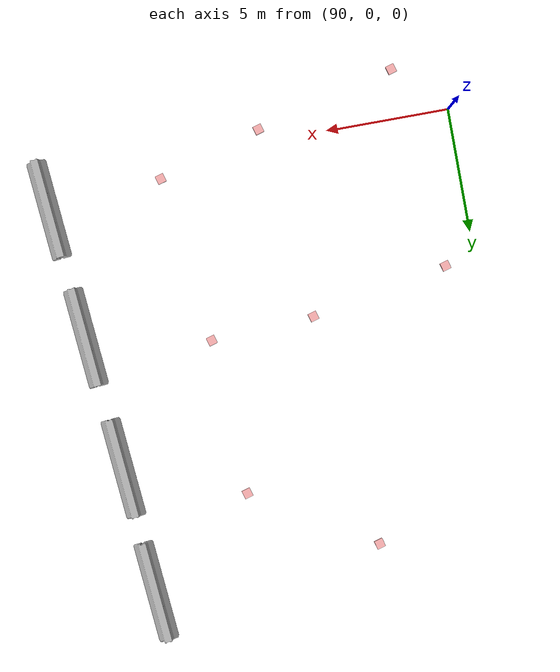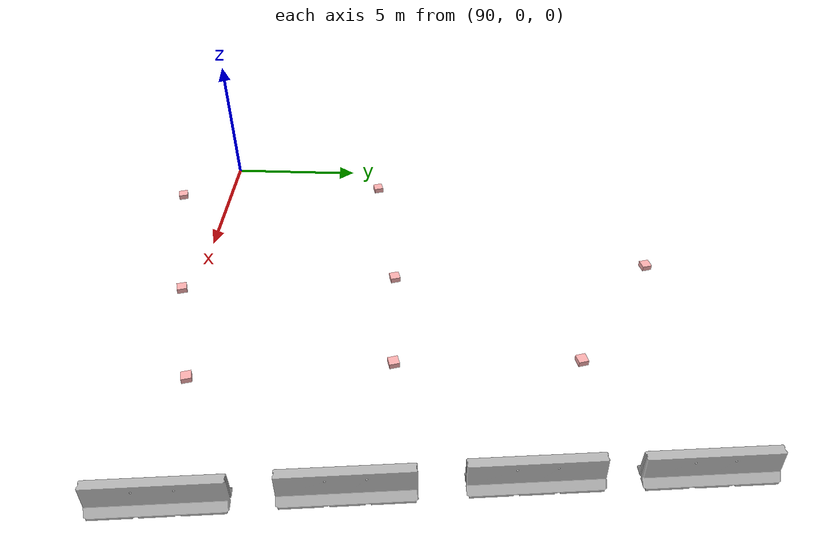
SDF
<sdf version="1.7">
 <world name="default">
  <model name="ground_plane">
   <static>1</static>
   <link name="link">
    <collision name="collision">
     <geometry><plane><normal>0 0 1</normal><size>500 500</size></plane></geometry>
     <surface><friction><ode><mu>100</mu><mu2>50</mu2></ode></friction></surface>
    </collision>
    <velocity_decay><linear>0</linear><angular>0</angular></velocity_decay>
   </link>
  </model>
  <model name="mine_clone_6">
   <link name="link">
    <inertial>
     <mass>1</mass>
     <inertia>
      <ixx>0.166667</ixx>
      <ixy>0</ixy>
      <ixz>0</ixz>
      <iyy>0.166667</iyy>
      <iyz>0</iyz>
      <izz>0.166667</izz>
     </inertia>
    </inertial>
    <visual name="visual">
     <geometry><box><size>0.35 0.35 0.2</size></box></geometry>
     <material>
      <script><name>Gazebo/Grey</name><uri>file://media/materials/scripts/gazebo.material</uri></script>
      <shader type="pixel"><normal_map>__default__</normal_map></shader>
      <diffuse>1 0.7 0.7 1</diffuse>
      <ambient>0.3 0.3 0.3 1</ambient>
      <specular>0.01 0.01 0.01 1</specular>
      <emissive>1 0.7 0 1</emissive>
      <lighting>1</lighting>
     </material>
    </visual>
    <collision name="collision">
     <geometry><box><size>0.35 0.35 0.2</size></box></geometry>
     <surface>
      <friction>
       <ode><mu>1</mu><mu2>1</mu2><fdir1>0 0 0</fdir1><slip1>0</slip1><slip2>0</slip2></ode>
       <torsional>
        <coefficient>1</coefficient>
        <patch_radius>0</patch_radius>
        <surface_radius>0</surface_radius>
        <use_patch_radius>1</use_patch_radius>
        <ode><slip>0</slip></ode>
       </torsional>
      </friction>
      <bounce><restitution_coefficient>0</restitution_coefficient><threshold>1e+06</threshold></bounce>
      <contact>
       <collide_without_contact>0</collide_without_contact>
       <collide_without_contact_bitmask>1</collide_without_contact_bitmask>
       <collide_bitmask>1</collide_bitmask>
       <ode>
        <soft_cfm>0</soft_cfm>
        <soft_erp>0.2</soft_erp>
        <kp>1e+13</kp>
        <kd>1</kd>
        <max_vel>0.01</max_vel>
        <min_depth>0</min_depth>
       </ode>
       <bullet>
        <split_impulse>1</split_impulse>
        <split_impulse_penetration_threshold>-0.01</split_impulse_penetration_threshold>
        <soft_cfm>0</soft_cfm>
        <soft_erp>0.2</soft_erp>
        <kp>1e+13</kp>
        <kd>1</kd>
       </bullet>
      </contact>
     </surface>
    </collision>
   </link>
   <static>0</static>
   <pose>95.7708 16.7644 0.099997 7e-06 -7e-06 -1.28503</pose>
  </model>
  <model name="mine_clone_8">
   <link name="link">
    <inertial>
     <mass>1</mass>
     <inertia>
      <ixx>0.166667</ixx>
      <ixy>0</ixy>
      <ixz>0</ixz>
      <iyy>0.166667</iyy>
      <iyz>0</iyz>
      <izz>0.166667</izz>
     </inertia>
    </inertial>
    <visual name="visual">
     <geometry><box><size>0.35 0.35 0.2</size></box></geometry>
     <material>
      <script><name>Gazebo/Grey</name><uri>file://media/materials/scripts/gazebo.material</uri></script>
      <shader type="pixel"><normal_map>__default__</normal_map></shader>
      <diffuse>1 0.7 0.7 1</diffuse>
      <ambient>0.3 0.3 0.3 1</ambient>
      <specular>0.01 0.01 0.01 1</specular>
      <emissive>1 0.7 0 1</emissive>
      <lighting>1</lighting>
     </material>
    </visual>
    <collision name="collision">
     <geometry><box><size>0.35 0.35 0.2</size></box></geometry>
     <surface>
      <friction>
       <ode><mu>1</mu><mu2>1</mu2><fdir1>0 0 0</fdir1><slip1>0</slip1><slip2>0</slip2></ode>
       <torsional>
        <coefficient>1</coefficient>
        <patch_radius>0</patch_radius>
        <surface_radius>0</surface_radius>
        <use_patch_radius>1</use_patch_radius>
        <ode><slip>0</slip></ode>
       </torsional>
      </friction>
      <bounce><restitution_coefficient>0</restitution_coefficient><threshold>1e+06</threshold></bounce>
      <contact>
       <collide_without_contact>0</collide_without_contact>
       <collide_without_contact_bitmask>1</collide_without_contact_bitmask>
       <collide_bitmask>1</collide_bitmask>
       <ode>
        <soft_cfm>0</soft_cfm>
        <soft_erp>0.2</soft_erp>
        <kp>1e+13</kp>
        <kd>1</kd>
        <max_vel>0.01</max_vel>
        <min_depth>0</min_depth>
       </ode>
       <bullet>
        <split_impulse>1</split_impulse>
        <split_impulse_penetration_threshold>-0.01</split_impulse_penetration_threshold>
        <soft_cfm>0</soft_cfm>
        <soft_erp>0.2</soft_erp>
        <kp>1e+13</kp>
        <kd>1</kd>
       </bullet>
      </contact>
     </surface>
    </collision>
   </link>
   <static>0</static>
   <pose>100.671 13.8361 0.099997 7e-06 -7e-06 -1.28503</pose>
  </model>
  <model name="mine_clone_9">
   <link name="link">
    <inertial>
     <mass>1</mass>
     <inertia>
      <ixx>0.166667</ixx>
      <ixy>0</ixy>
      <ixz>0</ixz>
      <iyy>0.166667</iyy>
      <iyz>0</iyz>
      <izz>0.166667</izz>
     </inertia>
    </inertial>
    <visual name="visual">
     <geometry><box><size>0.35 0.35 0.2</size></box></geometry>
     <material>
      <script><name>Gazebo/Grey</name><uri>file://media/materials/scripts/gazebo.material</uri></script>
      <shader type="pixel"><normal_map>__default__</normal_map></shader>
      <diffuse>1 0.7 0.7 1</diffuse>
      <ambient>0.3 0.3 0.3 1</ambient>
      <specular>0.01 0.01 0.01 1</specular>
      <emissive>1 0.7 0 1</emissive>
      <lighting>1</lighting>
     </material>
    </visual>
    <collision name="collision">
     <geometry><box><size>0.35 0.35 0.2</size></box></geometry>
     <surface>
      <friction>
       <ode><mu>1</mu><mu2>1</mu2><fdir1>0 0 0</fdir1><slip1>0</slip1><slip2>0</slip2></ode>
       <torsional>
        <coefficient>1</coefficient>
        <patch_radius>0</patch_radius>
        <surface_radius>0</surface_radius>
        <use_patch_radius>1</use_patch_radius>
        <ode><slip>0</slip></ode>
       </torsional>
      </friction>
      <bounce><restitution_coefficient>0</restitution_coefficient><threshold>1e+06</threshold></bounce>
      <contact>
       <collide_without_contact>0</collide_without_contact>
       <collide_without_contact_bitmask>1</collide_without_contact_bitmask>
       <collide_bitmask>1</collide_bitmask>
       <ode>
        <soft_cfm>0</soft_cfm>
        <soft_erp>0.2</soft_erp>
        <kp>1e+13</kp>
        <kd>1</kd>
        <max_vel>0.01</max_vel>
        <min_depth>0</min_depth>
       </ode>
       <bullet>
        <split_impulse>1</split_impulse>
        <split_impulse_penetration_threshold>-0.01</split_impulse_penetration_threshold>
        <soft_cfm>0</soft_cfm>
        <soft_erp>0.2</soft_erp>
        <kp>1e+13</kp>
        <kd>1</kd>
       </bullet>
      </contact>
     </surface>
    </collision>
   </link>
   <static>0</static>
   <pose>101.011 7.52485 0.099997 7e-06 -7e-06 -1.28503</pose>
  </model>
  <model name="mine_clone_10">
   <link name="link">
    <inertial>
     <mass>1</mass>
     <inertia>
      <ixx>0.166667</ixx>
      <ixy>0</ixy>
      <ixz>0</ixz>
      <iyy>0.166667</iyy>
      <iyz>0</iyz>
      <izz>0.166667</izz>
     </inertia>
    </inertial>
    <visual name="visual">
     <geometry><box><size>0.35 0.35 0.2</size></box></geometry>
     <material>
      <script><name>Gazebo/Grey</name><uri>file://media/materials/scripts/gazebo.material</uri></script>
      <shader type="pixel"><normal_map>__default__</normal_map></shader>
      <diffuse>1 0.7 0.7 1</diffuse>
      <ambient>0.3 0.3 0.3 1</ambient>
      <specular>0.01 0.01 0.01 1</specular>
      <emissive>1 0.7 0 1</emissive>
      <lighting>1</lighting>
     </material>
    </visual>
    <collision name="collision">
     <geometry><box><size>0.35 0.35 0.2</size></box></geometry>
     <surface>
      <friction>
       <ode><mu>1</mu><mu2>1</mu2><fdir1>0 0 0</fdir1><slip1>0</slip1><slip2>0</slip2></ode>
       <torsional>
        <coefficient>1</coefficient>
        <patch_radius>0</patch_radius>
        <surface_radius>0</surface_radius>
        <use_patch_radius>1</use_patch_radius>
        <ode><slip>0</slip></ode>
       </torsional>
      </friction>
      <bounce><restitution_coefficient>0</restitution_coefficient><threshold>1e+06</threshold></bounce>
      <contact>
       <collide_without_contact>0</collide_without_contact>
       <collide_without_contact_bitmask>1</collide_without_contact_bitmask>
       <collide_bitmask>1</collide_bitmask>
       <ode>
        <soft_cfm>0</soft_cfm>
        <soft_erp>0.2</soft_erp>
        <kp>1e+13</kp>
        <kd>1</kd>
        <max_vel>0.01</max_vel>
        <min_depth>0</min_depth>
       </ode>
       <bullet>
        <split_impulse>1</split_impulse>
        <split_impulse_penetration_threshold>-0.01</split_impulse_penetration_threshold>
        <soft_cfm>0</soft_cfm>
        <soft_erp>0.2</soft_erp>
        <kp>1e+13</kp>
        <kd>1</kd>
       </bullet>
      </contact>
     </surface>
    </collision>
   </link>
   <static>0</static>
   <pose>96.8074 7.28599 0.099997 7e-06 -7e-06 -1.28503</pose>
  </model>
  <model name="mine_clone_11">
   <link name="link">
    <inertial>
     <mass>1</mass>
     <inertia>
      <ixx>0.166667</ixx>
      <ixy>0</ixy>
      <ixz>0</ixz>
      <iyy>0.166667</iyy>
      <iyz>0</iyz>
      <izz>0.166667</izz>
     </inertia>
    </inertial>
    <visual name="visual">
     <geometry><box><size>0.35 0.35 0.2</size></box></geometry>
     <material>
      <script><name>Gazebo/Grey</name><uri>file://media/materials/scripts/gazebo.material</uri></script>
      <shader type="pixel"><normal_map>__default__</normal_map></shader>
      <diffuse>1 0.7 0.7 1</diffuse>
      <ambient>0.3 0.3 0.3 1</ambient>
      <specular>0.01 0.01 0.01 1</specular>
      <emissive>1 0.7 0 1</emissive>
      <lighting>1</lighting>
     </material>
    </visual>
    <collision name="collision">
     <geometry><box><size>0.35 0.35 0.2</size></box></geometry>
     <surface>
      <friction>
       <ode><mu>1</mu><mu2>1</mu2><fdir1>0 0 0</fdir1><slip1>0</slip1><slip2>0</slip2></ode>
       <torsional>
        <coefficient>1</coefficient>
        <patch_radius>0</patch_radius>
        <surface_radius>0</surface_radius>
        <use_patch_radius>1</use_patch_radius>
        <ode><slip>0</slip></ode>
       </torsional>
      </friction>
      <bounce><restitution_coefficient>0</restitution_coefficient><threshold>1e+06</threshold></bounce>
      <contact>
       <collide_without_contact>0</collide_without_contact>
       <collide_without_contact_bitmask>1</collide_without_contact_bitmask>
       <collide_bitmask>1</collide_bitmask>
       <ode>
        <soft_cfm>0</soft_cfm>
        <soft_erp>0.2</soft_erp>
        <kp>1e+13</kp>
        <kd>1</kd>
        <max_vel>0.01</max_vel>
        <min_depth>0</min_depth>
       </ode>
       <bullet>
        <split_impulse>1</split_impulse>
        <split_impulse_penetration_threshold>-0.01</split_impulse_penetration_threshold>
        <soft_cfm>0</soft_cfm>
        <soft_erp>0.2</soft_erp>
        <kp>1e+13</kp>
        <kd>1</kd>
       </bullet>
      </contact>
     </surface>
    </collision>
   </link>
   <static>0</static>
   <pose>91.2165 6.20438 0.099997 7e-06 -7e-06 -1.28503</pose>
  </model>
  <model name="mine_clone_12">
   <link name="link">
    <inertial>
     <mass>1</mass>
     <inertia>
      <ixx>0.166667</ixx>
      <ixy>0</ixy>
      <ixz>0</ixz>
      <iyy>0.166667</iyy>
      <iyz>0</iyz>
      <izz>0.166667</izz>
     </inertia>
    </inertial>
    <visual name="visual">
     <geometry><box><size>0.35 0.35 0.2</size></box></geometry>
     <material>
      <script><name>Gazebo/Grey</name><uri>file://media/materials/scripts/gazebo.material</uri></script>
      <shader type="pixel"><normal_map>__default__</normal_map></shader>
      <diffuse>1 0.7 0.7 1</diffuse>
      <ambient>0.3 0.3 0.3 1</ambient>
      <specular>0.01 0.01 0.01 1</specular>
      <emissive>1 0.7 0 1</emissive>
      <lighting>1</lighting>
     </material>
    </visual>
    <collision name="collision">
     <geometry><box><size>0.35 0.35 0.2</size></box></geometry>
     <surface>
      <friction>
       <ode><mu>1</mu><mu2>1</mu2><fdir1>0 0 0</fdir1><slip1>0</slip1><slip2>0</slip2></ode>
       <torsional>
        <coefficient>1</coefficient>
        <patch_radius>0</patch_radius>
        <surface_radius>0</surface_radius>
        <use_patch_radius>1</use_patch_radius>
        <ode><slip>0</slip></ode>
       </torsional>
      </friction>
      <bounce><restitution_coefficient>0</restitution_coefficient><threshold>1e+06</threshold></bounce>
      <contact>
       <collide_without_contact>0</collide_without_contact>
       <collide_without_contact_bitmask>1</collide_without_contact_bitmask>
       <collide_bitmask>1</collide_bitmask>
       <ode>
        <soft_cfm>0</soft_cfm>
        <soft_erp>0.2</soft_erp>
        <kp>1e+13</kp>
        <kd>1</kd>
        <max_vel>0.01</max_vel>
        <min_depth>0</min_depth>
       </ode>
       <bullet>
        <split_impulse>1</split_impulse>
        <split_impulse_penetration_threshold>-0.01</split_impulse_penetration_threshold>
        <soft_cfm>0</soft_cfm>
        <soft_erp>0.2</soft_erp>
        <kp>1e+13</kp>
        <kd>1</kd>
       </bullet>
      </contact>
     </surface>
    </collision>
   </link>
   <static>0</static>
   <pose>91.994 -1.98623 0.099997 7e-06 -7e-06 -1.28503</pose>
  </model>
  <model name="mine_clone_13">
   <link name="link">
    <inertial>
     <mass>1</mass>
     <inertia>
      <ixx>0.166667</ixx>
      <ixy>0</ixy>
      <ixz>0</ixz>
      <iyy>0.166667</iyy>
      <iyz>0</iyz>
      <izz>0.166667</izz>
     </inertia>
    </inertial>
    <visual name="visual">
     <geometry><box><size>0.35 0.35 0.2</size></box></geometry>
     <material>
      <script><name>Gazebo/Grey</name><uri>file://media/materials/scripts/gazebo.material</uri></script>
      <shader type="pixel"><normal_map>__default__</normal_map></shader>
      <diffuse>1 0.7 0.7 1</diffuse>
      <ambient>0.3 0.3 0.3 1</ambient>
      <specular>0.01 0.01 0.01 1</specular>
      <emissive>1 0.7 0 1</emissive>
      <lighting>1</lighting>
     </material>
    </visual>
    <collision name="collision">
     <geometry><box><size>0.35 0.35 0.2</size></box></geometry>
     <surface>
      <friction>
       <ode><mu>1</mu><mu2>1</mu2><fdir1>0 0 0</fdir1><slip1>0</slip1><slip2>0</slip2></ode>
       <torsional>
        <coefficient>1</coefficient>
        <patch_radius>0</patch_radius>
        <surface_radius>0</surface_radius>
        <use_patch_radius>1</use_patch_radius>
        <ode><slip>0</slip></ode>
       </torsional>
      </friction>
      <bounce><restitution_coefficient>0</restitution_coefficient><threshold>1e+06</threshold></bounce>
      <contact>
       <collide_without_contact>0</collide_without_contact>
       <collide_without_contact_bitmask>1</collide_without_contact_bitmask>
       <collide_bitmask>1</collide_bitmask>
       <ode>
        <soft_cfm>0</soft_cfm>
        <soft_erp>0.2</soft_erp>
        <kp>1e+13</kp>
        <kd>1</kd>
        <max_vel>0.01</max_vel>
        <min_depth>0</min_depth>
       </ode>
       <bullet>
        <split_impulse>1</split_impulse>
        <split_impulse_penetration_threshold>-0.01</split_impulse_penetration_threshold>
        <soft_cfm>0</soft_cfm>
        <soft_erp>0.2</soft_erp>
        <kp>1e+13</kp>
        <kd>1</kd>
       </bullet>
      </contact>
     </surface>
    </collision>
   </link>
   <static>0</static>
   <pose>97.685 -0.525294 0.099997 7e-06 -7e-06 -1.28503</pose>
  </model>
  <model name="mine_clone_14">
   <link name="link">
    <inertial>
     <mass>1</mass>
     <inertia>
      <ixx>0.166667</ixx>
      <ixy>0</ixy>
      <ixz>0</ixz>
      <iyy>0.166667</iyy>
      <iyz>0</iyz>
      <izz>0.166667</izz>
     </inertia>
    </inertial>
    <visual name="visual">
     <geometry><box><size>0.35 0.35 0.2</size></box></geometry>
     <material>
      <script><name>Gazebo/Grey</name><uri>file://media/materials/scripts/gazebo.material</uri></script>
      <shader type="pixel"><normal_map>__default__</normal_map></shader>
      <diffuse>1 0.7 0.7 1</diffuse>
      <ambient>0.3 0.3 0.3 1</ambient>
      <specular>0.01 0.01 0.01 1</specular>
      <emissive>1 0.7 0 1</emissive>
      <lighting>1</lighting>
     </material>
    </visual>
    <collision name="collision">
     <geometry><box><size>0.35 0.35 0.2</size></box></geometry>
     <surface>
      <friction>
       <ode><mu>1</mu><mu2>1</mu2><fdir1>0 0 0</fdir1><slip1>0</slip1><slip2>0</slip2></ode>
       <torsional>
        <coefficient>1</coefficient>
        <patch_radius>0</patch_radius>
        <surface_radius>0</surface_radius>
        <use_patch_radius>1</use_patch_radius>
        <ode><slip>0</slip></ode>
       </torsional>
      </friction>
      <bounce><restitution_coefficient>0</restitution_coefficient><threshold>1e+06</threshold></bounce>
      <contact>
       <collide_without_contact>0</collide_without_contact>
       <collide_without_contact_bitmask>1</collide_without_contact_bitmask>
       <collide_bitmask>1</collide_bitmask>
       <ode>
        <soft_cfm>0</soft_cfm>
        <soft_erp>0.2</soft_erp>
        <kp>1e+13</kp>
        <kd>1</kd>
        <max_vel>0.01</max_vel>
        <min_depth>0</min_depth>
       </ode>
       <bullet>
        <split_impulse>1</split_impulse>
        <split_impulse_penetration_threshold>-0.01</split_impulse_penetration_threshold>
        <soft_cfm>0</soft_cfm>
        <soft_erp>0.2</soft_erp>
        <kp>1e+13</kp>
        <kd>1</kd>
       </bullet>
      </contact>
     </surface>
    </collision>
   </link>
   <static>0</static>
   <pose>101.907 0.752517 0.099997 7e-06 -7e-06 -1.28503</pose>
  </model>
  <model name="jersey_barrier_clone_0_clone_6_clone_4">
   <static>1</static>
   <link name="link">
    <visual name="visual">
     <geometry><mesh><uri>model://jersey barrier/meshes/jersey_barrier.dae</uri></mesh></geometry>
    </visual>
    <collision name="upright">
     <pose>0 0 0.5715 0 -0 0</pose>
     <geometry><box><size>4.06542 0.3063 1.143</size></box></geometry>
    </collision>
    <collision name="base">
     <pose>0 0 0.032258 0 -0 0</pose>
     <geometry><box><size>4.06542 0.8107 0.064516</size></box></geometry>
    </collision>
    <collision name="base2">
     <pose>0 0 0.1 0 -0 0</pose>
     <geometry><box><size>4.06542 0.65 0.1</size></box></geometry>
    </collision>
    <collision name="base3">
     <pose>0 0 0.2 0 -0 0</pose>
     <geometry><box><size>4.06542 0.5 0.1</size></box></geometry>
    </collision>
    <collision name="left-angle">
     <pose>0 -0.224 0.2401 0.9 -0 0</pose>
     <geometry><box><size>4.06542 0.5 0.064516</size></box></geometry>
    </collision>
    <collision name="right-angle">
     <pose>0 0.224 0.2401 -0.9 0 0</pose>
     <geometry><box><size>4.06542 0.5 0.064516</size></box></geometry>
    </collision>
   </link>
   <pose>104.976 17.0671 0 0 0 -1.47682</pose>
  </model>
  <model name="jersey_barrier_clone_0_clone_6_clone_5">
   <static>1</static>
   <link name="link">
    <visual name="visual">
     <geometry><mesh><uri>model://jersey barrier/meshes/jersey_barrier.dae</uri></mesh></geometry>
    </visual>
    <collision name="upright">
     <pose>0 0 0.5715 0 -0 0</pose>
     <geometry><box><size>4.06542 0.3063 1.143</size></box></geometry>
    </collision>
    <collision name="base">
     <pose>0 0 0.032258 0 -0 0</pose>
     <geometry><box><size>4.06542 0.8107 0.064516</size></box></geometry>
    </collision>
    <collision name="base2">
     <pose>0 0 0.1 0 -0 0</pose>
     <geometry><box><size>4.06542 0.65 0.1</size></box></geometry>
    </collision>
    <collision name="base3">
     <pose>0 0 0.2 0 -0 0</pose>
     <geometry><box><size>4.06542 0.5 0.1</size></box></geometry>
    </collision>
    <collision name="left-angle">
     <pose>0 -0.224 0.2401 0.9 -0 0</pose>
     <geometry><box><size>4.06542 0.5 0.064516</size></box></geometry>
    </collision>
    <collision name="right-angle">
     <pose>0 0.224 0.2401 -0.9 0 0</pose>
     <geometry><box><size>4.06542 0.5 0.064516</size></box></geometry>
    </collision>
   </link>
   <pose>105.419 11.9594 0 0 0 -1.47682</pose>
  </model>
  <model name="jersey_barrier_clone_0_clone_6_clone_6">
   <static>1</static>
   <link name="link">
    <visual name="visual">
     <geometry><mesh><uri>model://jersey barrier/meshes/jersey_barrier.dae</uri></mesh></geometry>
    </visual>
    <collision name="upright">
     <pose>0 0 0.5715 0 -0 0</pose>
     <geometry><box><size>4.06542 0.3063 1.143</size></box></geometry>
    </collision>
    <collision name="base">
     <pose>0 0 0.032258 0 -0 0</pose>
     <geometry><box><size>4.06542 0.8107 0.064516</size></box></geometry>
    </collision>
    <collision name="base2">
     <pose>0 0 0.1 0 -0 0</pose>
     <geometry><box><size>4.06542 0.65 0.1</size></box></geometry>
    </collision>
    <collision name="base3">
     <pose>0 0 0.2 0 -0 0</pose>
     <geometry><box><size>4.06542 0.5 0.1</size></box></geometry>
    </collision>
    <collision name="left-angle">
     <pose>0 -0.224 0.2401 0.9 -0 0</pose>
     <geometry><box><size>4.06542 0.5 0.064516</size></box></geometry>
    </collision>
    <collision name="right-angle">
     <pose>0 0.224 0.2401 -0.9 0 0</pose>
     <geometry><box><size>4.06542 0.5 0.064516</size></box></geometry>
    </collision>
   </link>
   <pose>105.99 6.52917 0 0 0 -1.47682</pose>
  </model>
  <model name="jersey_barrier_clone_0_clone_6_clone_7">
   <static>1</static>
   <link name="link">
    <visual name="visual">
     <geometry><mesh><uri>model://jersey barrier/meshes/jersey_barrier.dae</uri></mesh></geometry>
    </visual>
    <collision name="upright">
     <pose>0 0 0.5715 0 -0 0</pose>
     <geometry><box><size>4.06542 0.3063 1.143</size></box></geometry>
    </collision>
    <collision name="base">
     <pose>0 0 0.032258 0 -0 0</pose>
     <geometry><box><size>4.06542 0.8107 0.064516</size></box></geometry>
    </collision>
    <collision name="base2">
     <pose>0 0 0.1 0 -0 0</pose>
     <geometry><box><size>4.06542 0.65 0.1</size></box></geometry>
    </collision>
    <collision name="base3">
     <pose>0 0 0.2 0 -0 0</pose>
     <geometry><box><size>4.06542 0.5 0.1</size></box></geometry>
    </collision>
    <collision name="left-angle">
     <pose>0 -0.224 0.2401 0.9 -0 0</pose>
     <geometry><box><size>4.06542 0.5 0.064516</size></box></geometry>
    </collision>
    <collision name="right-angle">
     <pose>0 0.224 0.2401 -0.9 0 0</pose>
     <geometry><box><size>4.06542 0.5 0.064516</size></box></geometry>
    </collision>
   </link>
   <pose>106.552 1.20343 0 0 0 -1.47682</pose>
  </model>
 </world>
</sdf>
